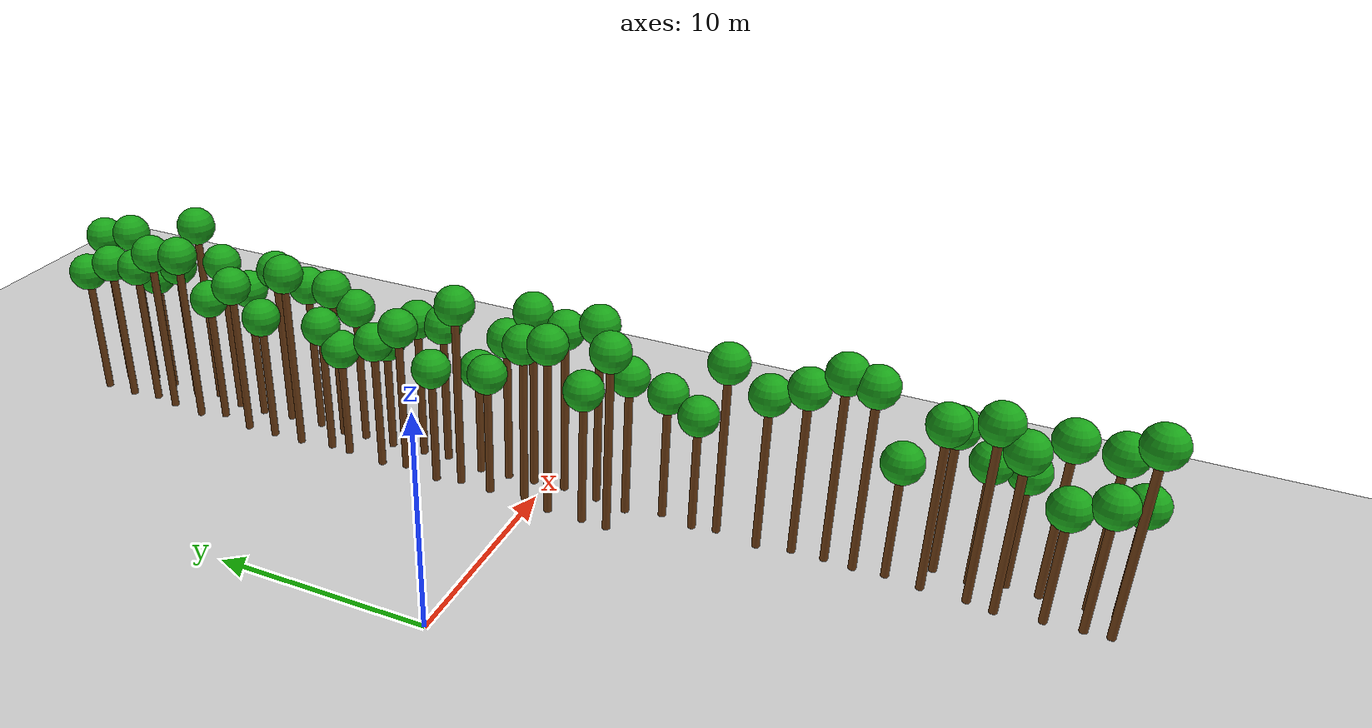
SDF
<sdf version="1.6">
 <world name="forest_world">
  <include><uri>model://sun</uri></include>
  <include><uri>model://ground_plane</uri></include>
  <model name="tree_783">
   <static>true</static>
   <link name="trunk">
    <collision name="collision">
     <pose>9.26 -3.86 4.20 0 0 0</pose>
     <geometry><cylinder><radius>0.18</radius><length>8.40</length></cylinder></geometry>
    </collision>
    <visual name="trunk_visual">
     <pose>9.26 -3.86 4.20 0 0 0</pose>
     <geometry><cylinder><radius>0.18</radius><length>8.40</length></cylinder></geometry>
     <material><ambient>0.35 0.20 0.05 1</ambient><diffuse>0.45 0.25 0.08 1</diffuse></material>
    </visual>
    <visual name="leaf_visual">
     <pose>9.26 -3.86 8.85 0 0 0</pose>
     <geometry><sphere><radius>0.9</radius></sphere></geometry>
     <material><ambient>0.05 0.45 0.05 1</ambient><diffuse>0.10 0.65 0.10 1</diffuse></material>
    </visual>
   </link>
  </model>
  <model name="tree_784">
   <static>true</static>
   <link name="trunk">
    <collision name="collision">
     <pose>9.31 -2.65 3.12 0 0 0</pose>
     <geometry><cylinder><radius>0.18</radius><length>6.24</length></cylinder></geometry>
    </collision>
    <visual name="trunk_visual">
     <pose>9.31 -2.65 3.12 0 0 0</pose>
     <geometry><cylinder><radius>0.18</radius><length>6.24</length></cylinder></geometry>
     <material><ambient>0.35 0.20 0.05 1</ambient><diffuse>0.45 0.25 0.08 1</diffuse></material>
    </visual>
    <visual name="leaf_visual">
     <pose>9.31 -2.65 6.69 0 0 0</pose>
     <geometry><sphere><radius>0.9</radius></sphere></geometry>
     <material><ambient>0.05 0.45 0.05 1</ambient><diffuse>0.10 0.65 0.10 1</diffuse></material>
    </visual>
   </link>
  </model>
  <model name="tree_785">
   <static>true</static>
   <link name="trunk">
    <collision name="collision">
     <pose>9.34 -0.96 4.01 0 0 0</pose>
     <geometry><cylinder><radius>0.18</radius><length>8.03</length></cylinder></geometry>
    </collision>
    <visual name="trunk_visual">
     <pose>9.34 -0.96 4.01 0 0 0</pose>
     <geometry><cylinder><radius>0.18</radius><length>8.03</length></cylinder></geometry>
     <material><ambient>0.35 0.20 0.05 1</ambient><diffuse>0.45 0.25 0.08 1</diffuse></material>
    </visual>
    <visual name="leaf_visual">
     <pose>9.34 -0.96 8.48 0 0 0</pose>
     <geometry><sphere><radius>0.9</radius></sphere></geometry>
     <material><ambient>0.05 0.45 0.05 1</ambient><diffuse>0.10 0.65 0.10 1</diffuse></material>
    </visual>
   </link>
  </model>
  <model name="tree_786">
   <static>true</static>
   <link name="trunk">
    <collision name="collision">
     <pose>9.75 0.42 3.75 0 0 0</pose>
     <geometry><cylinder><radius>0.18</radius><length>7.51</length></cylinder></geometry>
    </collision>
    <visual name="trunk_visual">
     <pose>9.75 0.42 3.75 0 0 0</pose>
     <geometry><cylinder><radius>0.18</radius><length>7.51</length></cylinder></geometry>
     <material><ambient>0.35 0.20 0.05 1</ambient><diffuse>0.45 0.25 0.08 1</diffuse></material>
    </visual>
    <visual name="leaf_visual">
     <pose>9.75 0.42 7.96 0 0 0</pose>
     <geometry><sphere><radius>0.9</radius></sphere></geometry>
     <material><ambient>0.05 0.45 0.05 1</ambient><diffuse>0.10 0.65 0.10 1</diffuse></material>
    </visual>
   </link>
  </model>
  <model name="tree_787">
   <static>true</static>
   <link name="trunk">
    <collision name="collision">
     <pose>9.58 2.10 2.86 0 0 0</pose>
     <geometry><cylinder><radius>0.18</radius><length>5.72</length></cylinder></geometry>
    </collision>
    <visual name="trunk_visual">
     <pose>9.58 2.10 2.86 0 0 0</pose>
     <geometry><cylinder><radius>0.18</radius><length>5.72</length></cylinder></geometry>
     <material><ambient>0.35 0.20 0.05 1</ambient><diffuse>0.45 0.25 0.08 1</diffuse></material>
    </visual>
    <visual name="leaf_visual">
     <pose>9.58 2.10 6.17 0 0 0</pose>
     <geometry><sphere><radius>0.9</radius></sphere></geometry>
     <material><ambient>0.05 0.45 0.05 1</ambient><diffuse>0.10 0.65 0.10 1</diffuse></material>
    </visual>
   </link>
  </model>
  <model name="tree_788">
   <static>true</static>
   <link name="trunk">
    <collision name="collision">
     <pose>9.66 3.66 4.35 0 0 0</pose>
     <geometry><cylinder><radius>0.18</radius><length>8.70</length></cylinder></geometry>
    </collision>
    <visual name="trunk_visual">
     <pose>9.66 3.66 4.35 0 0 0</pose>
     <geometry><cylinder><radius>0.18</radius><length>8.70</length></cylinder></geometry>
     <material><ambient>0.35 0.20 0.05 1</ambient><diffuse>0.45 0.25 0.08 1</diffuse></material>
    </visual>
    <visual name="leaf_visual">
     <pose>9.66 3.66 9.15 0 0 0</pose>
     <geometry><sphere><radius>0.9</radius></sphere></geometry>
     <material><ambient>0.05 0.45 0.05 1</ambient><diffuse>0.10 0.65 0.10 1</diffuse></material>
    </visual>
   </link>
  </model>
  <model name="tree_789">
   <static>true</static>
   <link name="trunk">
    <collision name="collision">
     <pose>9.36 4.81 2.72 0 0 0</pose>
     <geometry><cylinder><radius>0.18</radius><length>5.44</length></cylinder></geometry>
    </collision>
    <visual name="trunk_visual">
     <pose>9.36 4.81 2.72 0 0 0</pose>
     <geometry><cylinder><radius>0.18</radius><length>5.44</length></cylinder></geometry>
     <material><ambient>0.35 0.20 0.05 1</ambient><diffuse>0.45 0.25 0.08 1</diffuse></material>
    </visual>
    <visual name="leaf_visual">
     <pose>9.36 4.81 5.89 0 0 0</pose>
     <geometry><sphere><radius>0.9</radius></sphere></geometry>
     <material><ambient>0.05 0.45 0.05 1</ambient><diffuse>0.10 0.65 0.10 1</diffuse></material>
    </visual>
   </link>
  </model>
  <model name="tree_790">
   <static>true</static>
   <link name="trunk">
    <collision name="collision">
     <pose>9.67 6.63 3.46 0 0 0</pose>
     <geometry><cylinder><radius>0.18</radius><length>6.92</length></cylinder></geometry>
    </collision>
    <visual name="trunk_visual">
     <pose>9.67 6.63 3.46 0 0 0</pose>
     <geometry><cylinder><radius>0.18</radius><length>6.92</length></cylinder></geometry>
     <material><ambient>0.35 0.20 0.05 1</ambient><diffuse>0.45 0.25 0.08 1</diffuse></material>
    </visual>
    <visual name="leaf_visual">
     <pose>9.67 6.63 7.37 0 0 0</pose>
     <geometry><sphere><radius>0.9</radius></sphere></geometry>
     <material><ambient>0.05 0.45 0.05 1</ambient><diffuse>0.10 0.65 0.10 1</diffuse></material>
    </visual>
   </link>
  </model>
  <model name="tree_791">
   <static>true</static>
   <link name="trunk">
    <collision name="collision">
     <pose>9.41 7.80 3.04 0 0 0</pose>
     <geometry><cylinder><radius>0.18</radius><length>6.08</length></cylinder></geometry>
    </collision>
    <visual name="trunk_visual">
     <pose>9.41 7.80 3.04 0 0 0</pose>
     <geometry><cylinder><radius>0.18</radius><length>6.08</length></cylinder></geometry>
     <material><ambient>0.35 0.20 0.05 1</ambient><diffuse>0.45 0.25 0.08 1</diffuse></material>
    </visual>
    <visual name="leaf_visual">
     <pose>9.41 7.80 6.53 0 0 0</pose>
     <geometry><sphere><radius>0.9</radius></sphere></geometry>
     <material><ambient>0.05 0.45 0.05 1</ambient><diffuse>0.10 0.65 0.10 1</diffuse></material>
    </visual>
   </link>
  </model>
  <model name="tree_792">
   <static>true</static>
   <link name="trunk">
    <collision name="collision">
     <pose>9.56 9.74 2.58 0 0 0</pose>
     <geometry><cylinder><radius>0.18</radius><length>5.17</length></cylinder></geometry>
    </collision>
    <visual name="trunk_visual">
     <pose>9.56 9.74 2.58 0 0 0</pose>
     <geometry><cylinder><radius>0.18</radius><length>5.17</length></cylinder></geometry>
     <material><ambient>0.35 0.20 0.05 1</ambient><diffuse>0.45 0.25 0.08 1</diffuse></material>
    </visual>
    <visual name="leaf_visual">
     <pose>9.56 9.74 5.62 0 0 0</pose>
     <geometry><sphere><radius>0.9</radius></sphere></geometry>
     <material><ambient>0.05 0.45 0.05 1</ambient><diffuse>0.10 0.65 0.10 1</diffuse></material>
    </visual>
   </link>
  </model>
  <model name="tree_793">
   <static>true</static>
   <link name="trunk">
    <collision name="collision">
     <pose>9.60 10.76 3.06 0 0 0</pose>
     <geometry><cylinder><radius>0.18</radius><length>6.11</length></cylinder></geometry>
    </collision>
    <visual name="trunk_visual">
     <pose>9.60 10.76 3.06 0 0 0</pose>
     <geometry><cylinder><radius>0.18</radius><length>6.11</length></cylinder></geometry>
     <material><ambient>0.35 0.20 0.05 1</ambient><diffuse>0.45 0.25 0.08 1</diffuse></material>
    </visual>
    <visual name="leaf_visual">
     <pose>9.60 10.76 6.56 0 0 0</pose>
     <geometry><sphere><radius>0.9</radius></sphere></geometry>
     <material><ambient>0.05 0.45 0.05 1</ambient><diffuse>0.10 0.65 0.10 1</diffuse></material>
    </visual>
   </link>
  </model>
  <model name="tree_794">
   <static>true</static>
   <link name="trunk">
    <collision name="collision">
     <pose>9.33 12.37 4.27 0 0 0</pose>
     <geometry><cylinder><radius>0.18</radius><length>8.54</length></cylinder></geometry>
    </collision>
    <visual name="trunk_visual">
     <pose>9.33 12.37 4.27 0 0 0</pose>
     <geometry><cylinder><radius>0.18</radius><length>8.54</length></cylinder></geometry>
     <material><ambient>0.35 0.20 0.05 1</ambient><diffuse>0.45 0.25 0.08 1</diffuse></material>
    </visual>
    <visual name="leaf_visual">
     <pose>9.33 12.37 8.99 0 0 0</pose>
     <geometry><sphere><radius>0.9</radius></sphere></geometry>
     <material><ambient>0.05 0.45 0.05 1</ambient><diffuse>0.10 0.65 0.10 1</diffuse></material>
    </visual>
   </link>
  </model>
  <model name="tree_795">
   <static>true</static>
   <link name="trunk">
    <collision name="collision">
     <pose>9.31 13.92 3.00 0 0 0</pose>
     <geometry><cylinder><radius>0.18</radius><length>6.00</length></cylinder></geometry>
    </collision>
    <visual name="trunk_visual">
     <pose>9.31 13.92 3.00 0 0 0</pose>
     <geometry><cylinder><radius>0.18</radius><length>6.00</length></cylinder></geometry>
     <material><ambient>0.35 0.20 0.05 1</ambient><diffuse>0.45 0.25 0.08 1</diffuse></material>
    </visual>
    <visual name="leaf_visual">
     <pose>9.31 13.92 6.45 0 0 0</pose>
     <geometry><sphere><radius>0.9</radius></sphere></geometry>
     <material><ambient>0.05 0.45 0.05 1</ambient><diffuse>0.10 0.65 0.10 1</diffuse></material>
    </visual>
   </link>
  </model>
  <model name="tree_796">
   <static>true</static>
   <link name="trunk">
    <collision name="collision">
     <pose>9.30 15.45 3.65 0 0 0</pose>
     <geometry><cylinder><radius>0.18</radius><length>7.31</length></cylinder></geometry>
    </collision>
    <visual name="trunk_visual">
     <pose>9.30 15.45 3.65 0 0 0</pose>
     <geometry><cylinder><radius>0.18</radius><length>7.31</length></cylinder></geometry>
     <material><ambient>0.35 0.20 0.05 1</ambient><diffuse>0.45 0.25 0.08 1</diffuse></material>
    </visual>
    <visual name="leaf_visual">
     <pose>9.30 15.45 7.76 0 0 0</pose>
     <geometry><sphere><radius>0.9</radius></sphere></geometry>
     <material><ambient>0.05 0.45 0.05 1</ambient><diffuse>0.10 0.65 0.10 1</diffuse></material>
    </visual>
   </link>
  </model>
  <model name="tree_797">
   <static>true</static>
   <link name="trunk">
    <collision name="collision">
     <pose>9.69 17.21 3.04 0 0 0</pose>
     <geometry><cylinder><radius>0.18</radius><length>6.08</length></cylinder></geometry>
    </collision>
    <visual name="trunk_visual">
     <pose>9.69 17.21 3.04 0 0 0</pose>
     <geometry><cylinder><radius>0.18</radius><length>6.08</length></cylinder></geometry>
     <material><ambient>0.35 0.20 0.05 1</ambient><diffuse>0.45 0.25 0.08 1</diffuse></material>
    </visual>
    <visual name="leaf_visual">
     <pose>9.69 17.21 6.53 0 0 0</pose>
     <geometry><sphere><radius>0.9</radius></sphere></geometry>
     <material><ambient>0.05 0.45 0.05 1</ambient><diffuse>0.10 0.65 0.10 1</diffuse></material>
    </visual>
   </link>
  </model>
  <model name="tree_798">
   <static>true</static>
   <link name="trunk">
    <collision name="collision">
     <pose>9.28 18.41 4.13 0 0 0</pose>
     <geometry><cylinder><radius>0.18</radius><length>8.27</length></cylinder></geometry>
    </collision>
    <visual name="trunk_visual">
     <pose>9.28 18.41 4.13 0 0 0</pose>
     <geometry><cylinder><radius>0.18</radius><length>8.27</length></cylinder></geometry>
     <material><ambient>0.35 0.20 0.05 1</ambient><diffuse>0.45 0.25 0.08 1</diffuse></material>
    </visual>
    <visual name="leaf_visual">
     <pose>9.28 18.41 8.72 0 0 0</pose>
     <geometry><sphere><radius>0.9</radius></sphere></geometry>
     <material><ambient>0.05 0.45 0.05 1</ambient><diffuse>0.10 0.65 0.10 1</diffuse></material>
    </visual>
   </link>
  </model>
  <model name="tree_799">
   <static>true</static>
   <link name="trunk">
    <collision name="collision">
     <pose>9.42 20.18 3.99 0 0 0</pose>
     <geometry><cylinder><radius>0.18</radius><length>7.97</length></cylinder></geometry>
    </collision>
    <visual name="trunk_visual">
     <pose>9.42 20.18 3.99 0 0 0</pose>
     <geometry><cylinder><radius>0.18</radius><length>7.97</length></cylinder></geometry>
     <material><ambient>0.35 0.20 0.05 1</ambient><diffuse>0.45 0.25 0.08 1</diffuse></material>
    </visual>
    <visual name="leaf_visual">
     <pose>9.42 20.18 8.42 0 0 0</pose>
     <geometry><sphere><radius>0.9</radius></sphere></geometry>
     <material><ambient>0.05 0.45 0.05 1</ambient><diffuse>0.10 0.65 0.10 1</diffuse></material>
    </visual>
   </link>
  </model>
  <model name="tree_800">
   <static>true</static>
   <link name="trunk">
    <collision name="collision">
     <pose>9.67 21.48 3.45 0 0 0</pose>
     <geometry><cylinder><radius>0.18</radius><length>6.91</length></cylinder></geometry>
    </collision>
    <visual name="trunk_visual">
     <pose>9.67 21.48 3.45 0 0 0</pose>
     <geometry><cylinder><radius>0.18</radius><length>6.91</length></cylinder></geometry>
     <material><ambient>0.35 0.20 0.05 1</ambient><diffuse>0.45 0.25 0.08 1</diffuse></material>
    </visual>
    <visual name="leaf_visual">
     <pose>9.67 21.48 7.36 0 0 0</pose>
     <geometry><sphere><radius>0.9</radius></sphere></geometry>
     <material><ambient>0.05 0.45 0.05 1</ambient><diffuse>0.10 0.65 0.10 1</diffuse></material>
    </visual>
   </link>
  </model>
  <model name="tree_801">
   <static>true</static>
   <link name="trunk">
    <collision name="collision">
     <pose>9.48 22.89 3.45 0 0 0</pose>
     <geometry><cylinder><radius>0.18</radius><length>6.91</length></cylinder></geometry>
    </collision>
    <visual name="trunk_visual">
     <pose>9.48 22.89 3.45 0 0 0</pose>
     <geometry><cylinder><radius>0.18</radius><length>6.91</length></cylinder></geometry>
     <material><ambient>0.35 0.20 0.05 1</ambient><diffuse>0.45 0.25 0.08 1</diffuse></material>
    </visual>
    <visual name="leaf_visual">
     <pose>9.48 22.89 7.36 0 0 0</pose>
     <geometry><sphere><radius>0.9</radius></sphere></geometry>
     <material><ambient>0.05 0.45 0.05 1</ambient><diffuse>0.10 0.65 0.10 1</diffuse></material>
    </visual>
   </link>
  </model>
  <model name="tree_802">
   <static>true</static>
   <link name="trunk">
    <collision name="collision">
     <pose>9.51 24.56 3.05 0 0 0</pose>
     <geometry><cylinder><radius>0.18</radius><length>6.09</length></cylinder></geometry>
    </collision>
    <visual name="trunk_visual">
     <pose>9.51 24.56 3.05 0 0 0</pose>
     <geometry><cylinder><radius>0.18</radius><length>6.09</length></cylinder></geometry>
     <material><ambient>0.35 0.20 0.05 1</ambient><diffuse>0.45 0.25 0.08 1</diffuse></material>
    </visual>
    <visual name="leaf_visual">
     <pose>9.51 24.56 6.54 0 0 0</pose>
     <geometry><sphere><radius>0.9</radius></sphere></geometry>
     <material><ambient>0.05 0.45 0.05 1</ambient><diffuse>0.10 0.65 0.10 1</diffuse></material>
    </visual>
   </link>
  </model>
  <model name="tree_803">
   <static>true</static>
   <link name="trunk">
    <collision name="collision">
     <pose>11.19 -24.77 4.27 0 0 0</pose>
     <geometry><cylinder><radius>0.18</radius><length>8.55</length></cylinder></geometry>
    </collision>
    <visual name="trunk_visual">
     <pose>11.19 -24.77 4.27 0 0 0</pose>
     <geometry><cylinder><radius>0.18</radius><length>8.55</length></cylinder></geometry>
     <material><ambient>0.35 0.20 0.05 1</ambient><diffuse>0.45 0.25 0.08 1</diffuse></material>
    </visual>
    <visual name="leaf_visual">
     <pose>11.19 -24.77 9.00 0 0 0</pose>
     <geometry><sphere><radius>0.9</radius></sphere></geometry>
     <material><ambient>0.05 0.45 0.05 1</ambient><diffuse>0.10 0.65 0.10 1</diffuse></material>
    </visual>
   </link>
  </model>
  <model name="tree_804">
   <static>true</static>
   <link name="trunk">
    <collision name="collision">
     <pose>11.14 -23.72 2.79 0 0 0</pose>
     <geometry><cylinder><radius>0.18</radius><length>5.58</length></cylinder></geometry>
    </collision>
    <visual name="trunk_visual">
     <pose>11.14 -23.72 2.79 0 0 0</pose>
     <geometry><cylinder><radius>0.18</radius><length>5.58</length></cylinder></geometry>
     <material><ambient>0.35 0.20 0.05 1</ambient><diffuse>0.45 0.25 0.08 1</diffuse></material>
    </visual>
    <visual name="leaf_visual">
     <pose>11.14 -23.72 6.03 0 0 0</pose>
     <geometry><sphere><radius>0.9</radius></sphere></geometry>
     <material><ambient>0.05 0.45 0.05 1</ambient><diffuse>0.10 0.65 0.10 1</diffuse></material>
    </visual>
   </link>
  </model>
  <model name="tree_805">
   <static>true</static>
   <link name="trunk">
    <collision name="collision">
     <pose>11.04 -22.18 2.54 0 0 0</pose>
     <geometry><cylinder><radius>0.18</radius><length>5.08</length></cylinder></geometry>
    </collision>
    <visual name="trunk_visual">
     <pose>11.04 -22.18 2.54 0 0 0</pose>
     <geometry><cylinder><radius>0.18</radius><length>5.08</length></cylinder></geometry>
     <material><ambient>0.35 0.20 0.05 1</ambient><diffuse>0.45 0.25 0.08 1</diffuse></material>
    </visual>
    <visual name="leaf_visual">
     <pose>11.04 -22.18 5.53 0 0 0</pose>
     <geometry><sphere><radius>0.9</radius></sphere></geometry>
     <material><ambient>0.05 0.45 0.05 1</ambient><diffuse>0.10 0.65 0.10 1</diffuse></material>
    </visual>
   </link>
  </model>
  <model name="tree_806">
   <static>true</static>
   <link name="trunk">
    <collision name="collision">
     <pose>10.81 -20.28 3.62 0 0 0</pose>
     <geometry><cylinder><radius>0.18</radius><length>7.25</length></cylinder></geometry>
    </collision>
    <visual name="trunk_visual">
     <pose>10.81 -20.28 3.62 0 0 0</pose>
     <geometry><cylinder><radius>0.18</radius><length>7.25</length></cylinder></geometry>
     <material><ambient>0.35 0.20 0.05 1</ambient><diffuse>0.45 0.25 0.08 1</diffuse></material>
    </visual>
    <visual name="leaf_visual">
     <pose>10.81 -20.28 7.70 0 0 0</pose>
     <geometry><sphere><radius>0.9</radius></sphere></geometry>
     <material><ambient>0.05 0.45 0.05 1</ambient><diffuse>0.10 0.65 0.10 1</diffuse></material>
    </visual>
   </link>
  </model>
  <model name="tree_807">
   <static>true</static>
   <link name="trunk">
    <collision name="collision">
     <pose>11.01 -19.17 4.05 0 0 0</pose>
     <geometry><cylinder><radius>0.18</radius><length>8.10</length></cylinder></geometry>
    </collision>
    <visual name="trunk_visual">
     <pose>11.01 -19.17 4.05 0 0 0</pose>
     <geometry><cylinder><radius>0.18</radius><length>8.10</length></cylinder></geometry>
     <material><ambient>0.35 0.20 0.05 1</ambient><diffuse>0.45 0.25 0.08 1</diffuse></material>
    </visual>
    <visual name="leaf_visual">
     <pose>11.01 -19.17 8.55 0 0 0</pose>
     <geometry><sphere><radius>0.9</radius></sphere></geometry>
     <material><ambient>0.05 0.45 0.05 1</ambient><diffuse>0.10 0.65 0.10 1</diffuse></material>
    </visual>
   </link>
  </model>
  <model name="tree_808">
   <static>true</static>
   <link name="trunk">
    <collision name="collision">
     <pose>11.05 -17.27 3.76 0 0 0</pose>
     <geometry><cylinder><radius>0.18</radius><length>7.52</length></cylinder></geometry>
    </collision>
    <visual name="trunk_visual">
     <pose>11.05 -17.27 3.76 0 0 0</pose>
     <geometry><cylinder><radius>0.18</radius><length>7.52</length></cylinder></geometry>
     <material><ambient>0.35 0.20 0.05 1</ambient><diffuse>0.45 0.25 0.08 1</diffuse></material>
    </visual>
    <visual name="leaf_visual">
     <pose>11.05 -17.27 7.97 0 0 0</pose>
     <geometry><sphere><radius>0.9</radius></sphere></geometry>
     <material><ambient>0.05 0.45 0.05 1</ambient><diffuse>0.10 0.65 0.10 1</diffuse></material>
    </visual>
   </link>
  </model>
  <model name="tree_809">
   <static>true</static>
   <link name="trunk">
    <collision name="collision">
     <pose>11.25 -15.76 2.60 0 0 0</pose>
     <geometry><cylinder><radius>0.18</radius><length>5.21</length></cylinder></geometry>
    </collision>
    <visual name="trunk_visual">
     <pose>11.25 -15.76 2.60 0 0 0</pose>
     <geometry><cylinder><radius>0.18</radius><length>5.21</length></cylinder></geometry>
     <material><ambient>0.35 0.20 0.05 1</ambient><diffuse>0.45 0.25 0.08 1</diffuse></material>
    </visual>
    <visual name="leaf_visual">
     <pose>11.25 -15.76 5.66 0 0 0</pose>
     <geometry><sphere><radius>0.9</radius></sphere></geometry>
     <material><ambient>0.05 0.45 0.05 1</ambient><diffuse>0.10 0.65 0.10 1</diffuse></material>
    </visual>
   </link>
  </model>
  <model name="tree_810">
   <static>true</static>
   <link name="trunk">
    <collision name="collision">
     <pose>11.14 -14.40 4.22 0 0 0</pose>
     <geometry><cylinder><radius>0.18</radius><length>8.44</length></cylinder></geometry>
    </collision>
    <visual name="trunk_visual">
     <pose>11.14 -14.40 4.22 0 0 0</pose>
     <geometry><cylinder><radius>0.18</radius><length>8.44</length></cylinder></geometry>
     <material><ambient>0.35 0.20 0.05 1</ambient><diffuse>0.45 0.25 0.08 1</diffuse></material>
    </visual>
    <visual name="leaf_visual">
     <pose>11.14 -14.40 8.89 0 0 0</pose>
     <geometry><sphere><radius>0.9</radius></sphere></geometry>
     <material><ambient>0.05 0.45 0.05 1</ambient><diffuse>0.10 0.65 0.10 1</diffuse></material>
    </visual>
   </link>
  </model>
  <model name="tree_811">
   <static>true</static>
   <link name="trunk">
    <collision name="collision">
     <pose>11.23 -13.15 4.33 0 0 0</pose>
     <geometry><cylinder><radius>0.18</radius><length>8.66</length></cylinder></geometry>
    </collision>
    <visual name="trunk_visual">
     <pose>11.23 -13.15 4.33 0 0 0</pose>
     <geometry><cylinder><radius>0.18</radius><length>8.66</length></cylinder></geometry>
     <material><ambient>0.35 0.20 0.05 1</ambient><diffuse>0.45 0.25 0.08 1</diffuse></material>
    </visual>
    <visual name="leaf_visual">
     <pose>11.23 -13.15 9.11 0 0 0</pose>
     <geometry><sphere><radius>0.9</radius></sphere></geometry>
     <material><ambient>0.05 0.45 0.05 1</ambient><diffuse>0.10 0.65 0.10 1</diffuse></material>
    </visual>
   </link>
  </model>
  <model name="tree_812">
   <static>true</static>
   <link name="trunk">
    <collision name="collision">
     <pose>11.17 -11.73 3.84 0 0 0</pose>
     <geometry><cylinder><radius>0.18</radius><length>7.67</length></cylinder></geometry>
    </collision>
    <visual name="trunk_visual">
     <pose>11.17 -11.73 3.84 0 0 0</pose>
     <geometry><cylinder><radius>0.18</radius><length>7.67</length></cylinder></geometry>
     <material><ambient>0.35 0.20 0.05 1</ambient><diffuse>0.45 0.25 0.08 1</diffuse></material>
    </visual>
    <visual name="leaf_visual">
     <pose>11.17 -11.73 8.12 0 0 0</pose>
     <geometry><sphere><radius>0.9</radius></sphere></geometry>
     <material><ambient>0.05 0.45 0.05 1</ambient><diffuse>0.10 0.65 0.10 1</diffuse></material>
    </visual>
   </link>
  </model>
  <model name="tree_813">
   <static>true</static>
   <link name="trunk">
    <collision name="collision">
     <pose>10.88 -10.23 3.56 0 0 0</pose>
     <geometry><cylinder><radius>0.18</radius><length>7.13</length></cylinder></geometry>
    </collision>
    <visual name="trunk_visual">
     <pose>10.88 -10.23 3.56 0 0 0</pose>
     <geometry><cylinder><radius>0.18</radius><length>7.13</length></cylinder></geometry>
     <material><ambient>0.35 0.20 0.05 1</ambient><diffuse>0.45 0.25 0.08 1</diffuse></material>
    </visual>
    <visual name="leaf_visual">
     <pose>10.88 -10.23 7.58 0 0 0</pose>
     <geometry><sphere><radius>0.9</radius></sphere></geometry>
     <material><ambient>0.05 0.45 0.05 1</ambient><diffuse>0.10 0.65 0.10 1</diffuse></material>
    </visual>
   </link>
  </model>
  <model name="tree_814">
   <static>true</static>
   <link name="trunk">
    <collision name="collision">
     <pose>11.16 -8.32 4.00 0 0 0</pose>
     <geometry><cylinder><radius>0.18</radius><length>8.00</length></cylinder></geometry>
    </collision>
    <visual name="trunk_visual">
     <pose>11.16 -8.32 4.00 0 0 0</pose>
     <geometry><cylinder><radius>0.18</radius><length>8.00</length></cylinder></geometry>
     <material><ambient>0.35 0.20 0.05 1</ambient><diffuse>0.45 0.25 0.08 1</diffuse></material>
    </visual>
    <visual name="leaf_visual">
     <pose>11.16 -8.32 8.45 0 0 0</pose>
     <geometry><sphere><radius>0.9</radius></sphere></geometry>
     <material><ambient>0.05 0.45 0.05 1</ambient><diffuse>0.10 0.65 0.10 1</diffuse></material>
    </visual>
   </link>
  </model>
  <model name="tree_815">
   <static>true</static>
   <link name="trunk">
    <collision name="collision">
     <pose>10.98 -7.23 2.64 0 0 0</pose>
     <geometry><cylinder><radius>0.18</radius><length>5.28</length></cylinder></geometry>
    </collision>
    <visual name="trunk_visual">
     <pose>10.98 -7.23 2.64 0 0 0</pose>
     <geometry><cylinder><radius>0.18</radius><length>5.28</length></cylinder></geometry>
     <material><ambient>0.35 0.20 0.05 1</ambient><diffuse>0.45 0.25 0.08 1</diffuse></material>
    </visual>
    <visual name="leaf_visual">
     <pose>10.98 -7.23 5.73 0 0 0</pose>
     <geometry><sphere><radius>0.9</radius></sphere></geometry>
     <material><ambient>0.05 0.45 0.05 1</ambient><diffuse>0.10 0.65 0.10 1</diffuse></material>
    </visual>
   </link>
  </model>
  <model name="tree_816">
   <static>true</static>
   <link name="trunk">
    <collision name="collision">
     <pose>11.24 -5.73 2.93 0 0 0</pose>
     <geometry><cylinder><radius>0.18</radius><length>5.85</length></cylinder></geometry>
    </collision>
    <visual name="trunk_visual">
     <pose>11.24 -5.73 2.93 0 0 0</pose>
     <geometry><cylinder><radius>0.18</radius><length>5.85</length></cylinder></geometry>
     <material><ambient>0.35 0.20 0.05 1</ambient><diffuse>0.45 0.25 0.08 1</diffuse></material>
    </visual>
    <visual name="leaf_visual">
     <pose>11.24 -5.73 6.30 0 0 0</pose>
     <geometry><sphere><radius>0.9</radius></sphere></geometry>
     <material><ambient>0.05 0.45 0.05 1</ambient><diffuse>0.10 0.65 0.10 1</diffuse></material>
    </visual>
   </link>
  </model>
  <model name="tree_817">
   <static>true</static>
   <link name="trunk">
    <collision name="collision">
     <pose>10.81 -4.11 3.26 0 0 0</pose>
     <geometry><cylinder><radius>0.18</radius><length>6.52</length></cylinder></geometry>
    </collision>
    <visual name="trunk_visual">
     <pose>10.81 -4.11 3.26 0 0 0</pose>
     <geometry><cylinder><radius>0.18</radius><length>6.52</length></cylinder></geometry>
     <material><ambient>0.35 0.20 0.05 1</ambient><diffuse>0.45 0.25 0.08 1</diffuse></material>
    </visual>
    <visual name="leaf_visual">
     <pose>10.81 -4.11 6.97 0 0 0</pose>
     <geometry><sphere><radius>0.9</radius></sphere></geometry>
     <material><ambient>0.05 0.45 0.05 1</ambient><diffuse>0.10 0.65 0.10 1</diffuse></material>
    </visual>
   </link>
  </model>
  <model name="tree_818">
   <static>true</static>
   <link name="trunk">
    <collision name="collision">
     <pose>11.08 -2.58 4.25 0 0 0</pose>
     <geometry><cylinder><radius>0.18</radius><length>8.51</length></cylinder></geometry>
    </collision>
    <visual name="trunk_visual">
     <pose>11.08 -2.58 4.25 0 0 0</pose>
     <geometry><cylinder><radius>0.18</radius><length>8.51</length></cylinder></geometry>
     <material><ambient>0.35 0.20 0.05 1</ambient><diffuse>0.45 0.25 0.08 1</diffuse></material>
    </visual>
    <visual name="leaf_visual">
     <pose>11.08 -2.58 8.96 0 0 0</pose>
     <geometry><sphere><radius>0.9</radius></sphere></geometry>
     <material><ambient>0.05 0.45 0.05 1</ambient><diffuse>0.10 0.65 0.10 1</diffuse></material>
    </visual>
   </link>
  </model>
  <model name="tree_819">
   <static>true</static>
   <link name="trunk">
    <collision name="collision">
     <pose>11.23 -0.90 3.91 0 0 0</pose>
     <geometry><cylinder><radius>0.18</radius><length>7.82</length></cylinder></geometry>
    </collision>
    <visual name="trunk_visual">
     <pose>11.23 -0.90 3.91 0 0 0</pose>
     <geometry><cylinder><radius>0.18</radius><length>7.82</length></cylinder></geometry>
     <material><ambient>0.35 0.20 0.05 1</ambient><diffuse>0.45 0.25 0.08 1</diffuse></material>
    </visual>
    <visual name="leaf_visual">
     <pose>11.23 -0.90 8.27 0 0 0</pose>
     <geometry><sphere><radius>0.9</radius></sphere></geometry>
     <material><ambient>0.05 0.45 0.05 1</ambient><diffuse>0.10 0.65 0.10 1</diffuse></material>
    </visual>
   </link>
  </model>
  <model name="tree_820">
   <static>true</static>
   <link name="trunk">
    <collision name="collision">
     <pose>11.10 0.58 4.21 0 0 0</pose>
     <geometry><cylinder><radius>0.18</radius><length>8.41</length></cylinder></geometry>
    </collision>
    <visual name="trunk_visual">
     <pose>11.10 0.58 4.21 0 0 0</pose>
     <geometry><cylinder><radius>0.18</radius><length>8.41</length></cylinder></geometry>
     <material><ambient>0.35 0.20 0.05 1</ambient><diffuse>0.45 0.25 0.08 1</diffuse></material>
    </visual>
    <visual name="leaf_visual">
     <pose>11.10 0.58 8.86 0 0 0</pose>
     <geometry><sphere><radius>0.9</radius></sphere></geometry>
     <material><ambient>0.05 0.45 0.05 1</ambient><diffuse>0.10 0.65 0.10 1</diffuse></material>
    </visual>
   </link>
  </model>
  <model name="tree_821">
   <static>true</static>
   <link name="trunk">
    <collision name="collision">
     <pose>10.99 1.84 3.45 0 0 0</pose>
     <geometry><cylinder><radius>0.18</radius><length>6.90</length></cylinder></geometry>
    </collision>
    <visual name="trunk_visual">
     <pose>10.99 1.84 3.45 0 0 0</pose>
     <geometry><cylinder><radius>0.18</radius><length>6.90</length></cylinder></geometry>
     <material><ambient>0.35 0.20 0.05 1</ambient><diffuse>0.45 0.25 0.08 1</diffuse></material>
    </visual>
    <visual name="leaf_visual">
     <pose>10.99 1.84 7.35 0 0 0</pose>
     <geometry><sphere><radius>0.9</radius></sphere></geometry>
     <material><ambient>0.05 0.45 0.05 1</ambient><diffuse>0.10 0.65 0.10 1</diffuse></material>
    </visual>
   </link>
  </model>
  <model name="tree_822">
   <static>true</static>
   <link name="trunk">
    <collision name="collision">
     <pose>10.91 3.26 2.51 0 0 0</pose>
     <geometry><cylinder><radius>0.18</radius><length>5.02</length></cylinder></geometry>
    </collision>
    <visual name="trunk_visual">
     <pose>10.91 3.26 2.51 0 0 0</pose>
     <geometry><cylinder><radius>0.18</radius><length>5.02</length></cylinder></geometry>
     <material><ambient>0.35 0.20 0.05 1</ambient><diffuse>0.45 0.25 0.08 1</diffuse></material>
    </visual>
    <visual name="leaf_visual">
     <pose>10.91 3.26 5.47 0 0 0</pose>
     <geometry><sphere><radius>0.9</radius></sphere></geometry>
     <material><ambient>0.05 0.45 0.05 1</ambient><diffuse>0.10 0.65 0.10 1</diffuse></material>
    </visual>
   </link>
  </model>
  <model name="tree_823">
   <static>true</static>
   <link name="trunk">
    <collision name="collision">
     <pose>11.18 5.19 3.36 0 0 0</pose>
     <geometry><cylinder><radius>0.18</radius><length>6.71</length></cylinder></geometry>
    </collision>
    <visual name="trunk_visual">
     <pose>11.18 5.19 3.36 0 0 0</pose>
     <geometry><cylinder><radius>0.18</radius><length>6.71</length></cylinder></geometry>
     <material><ambient>0.35 0.20 0.05 1</ambient><diffuse>0.45 0.25 0.08 1</diffuse></material>
    </visual>
    <visual name="leaf_visual">
     <pose>11.18 5.19 7.16 0 0 0</pose>
     <geometry><sphere><radius>0.9</radius></sphere></geometry>
     <material><ambient>0.05 0.45 0.05 1</ambient><diffuse>0.10 0.65 0.10 1</diffuse></material>
    </visual>
   </link>
  </model>
  <model name="tree_824">
   <static>true</static>
   <link name="trunk">
    <collision name="collision">
     <pose>11.08 6.47 3.37 0 0 0</pose>
     <geometry><cylinder><radius>0.18</radius><length>6.74</length></cylinder></geometry>
    </collision>
    <visual name="trunk_visual">
     <pose>11.08 6.47 3.37 0 0 0</pose>
     <geometry><cylinder><radius>0.18</radius><length>6.74</length></cylinder></geometry>
     <material><ambient>0.35 0.20 0.05 1</ambient><diffuse>0.45 0.25 0.08 1</diffuse></material>
    </visual>
    <visual name="leaf_visual">
     <pose>11.08 6.47 7.19 0 0 0</pose>
     <geometry><sphere><radius>0.9</radius></sphere></geometry>
     <material><ambient>0.05 0.45 0.05 1</ambient><diffuse>0.10 0.65 0.10 1</diffuse></material>
    </visual>
   </link>
  </model>
  <model name="tree_825">
   <static>true</static>
   <link name="trunk">
    <collision name="collision">
     <pose>10.97 8.15 2.62 0 0 0</pose>
     <geometry><cylinder><radius>0.18</radius><length>5.24</length></cylinder></geometry>
    </collision>
    <visual name="trunk_visual">
     <pose>10.97 8.15 2.62 0 0 0</pose>
     <geometry><cylinder><radius>0.18</radius><length>5.24</length></cylinder></geometry>
     <material><ambient>0.35 0.20 0.05 1</ambient><diffuse>0.45 0.25 0.08 1</diffuse></material>
    </visual>
    <visual name="leaf_visual">
     <pose>10.97 8.15 5.69 0 0 0</pose>
     <geometry><sphere><radius>0.9</radius></sphere></geometry>
     <material><ambient>0.05 0.45 0.05 1</ambient><diffuse>0.10 0.65 0.10 1</diffuse></material>
    </visual>
   </link>
  </model>
  <model name="tree_826">
   <static>true</static>
   <link name="trunk">
    <collision name="collision">
     <pose>11.03 9.74 3.31 0 0 0</pose>
     <geometry><cylinder><radius>0.18</radius><length>6.62</length></cylinder></geometry>
    </collision>
    <visual name="trunk_visual">
     <pose>11.03 9.74 3.31 0 0 0</pose>
     <geometry><cylinder><radius>0.18</radius><length>6.62</length></cylinder></geometry>
     <material><ambient>0.35 0.20 0.05 1</ambient><diffuse>0.45 0.25 0.08 1</diffuse></material>
    </visual>
    <visual name="leaf_visual">
     <pose>11.03 9.74 7.07 0 0 0</pose>
     <geometry><sphere><radius>0.9</radius></sphere></geometry>
     <material><ambient>0.05 0.45 0.05 1</ambient><diffuse>0.10 0.65 0.10 1</diffuse></material>
    </visual>
   </link>
  </model>
  <model name="tree_827">
   <static>true</static>
   <link name="trunk">
    <collision name="collision">
     <pose>10.89 10.92 3.71 0 0 0</pose>
     <geometry><cylinder><radius>0.18</radius><length>7.41</length></cylinder></geometry>
    </collision>
    <visual name="trunk_visual">
     <pose>10.89 10.92 3.71 0 0 0</pose>
     <geometry><cylinder><radius>0.18</radius><length>7.41</length></cylinder></geometry>
     <material><ambient>0.35 0.20 0.05 1</ambient><diffuse>0.45 0.25 0.08 1</diffuse></material>
    </visual>
    <visual name="leaf_visual">
     <pose>10.89 10.92 7.86 0 0 0</pose>
     <geometry><sphere><radius>0.9</radius></sphere></geometry>
     <material><ambient>0.05 0.45 0.05 1</ambient><diffuse>0.10 0.65 0.10 1</diffuse></material>
    </visual>
   </link>
  </model>
  <model name="tree_828">
   <static>true</static>
   <link name="trunk">
    <collision name="collision">
     <pose>11.03 12.35 3.62 0 0 0</pose>
     <geometry><cylinder><radius>0.18</radius><length>7.23</length></cylinder></geometry>
    </collision>
    <visual name="trunk_visual">
     <pose>11.03 12.35 3.62 0 0 0</pose>
     <geometry><cylinder><radius>0.18</radius><length>7.23</length></cylinder></geometry>
     <material><ambient>0.35 0.20 0.05 1</ambient><diffuse>0.45 0.25 0.08 1</diffuse></material>
    </visual>
    <visual name="leaf_visual">
     <pose>11.03 12.35 7.68 0 0 0</pose>
     <geometry><sphere><radius>0.9</radius></sphere></geometry>
     <material><ambient>0.05 0.45 0.05 1</ambient><diffuse>0.10 0.65 0.10 1</diffuse></material>
    </visual>
   </link>
  </model>
  <model name="tree_829">
   <static>true</static>
   <link name="trunk">
    <collision name="collision">
     <pose>10.98 14.08 3.86 0 0 0</pose>
     <geometry><cylinder><radius>0.18</radius><length>7.71</length></cylinder></geometry>
    </collision>
    <visual name="trunk_visual">
     <pose>10.98 14.08 3.86 0 0 0</pose>
     <geometry><cylinder><radius>0.18</radius><length>7.71</length></cylinder></geometry>
     <material><ambient>0.35 0.20 0.05 1</ambient><diffuse>0.45 0.25 0.08 1</diffuse></material>
    </visual>
    <visual name="leaf_visual">
     <pose>10.98 14.08 8.16 0 0 0</pose>
     <geometry><sphere><radius>0.9</radius></sphere></geometry>
     <material><ambient>0.05 0.45 0.05 1</ambient><diffuse>0.10 0.65 0.10 1</diffuse></material>
    </visual>
   </link>
  </model>
  <model name="tree_830">
   <static>true</static>
   <link name="trunk">
    <collision name="collision">
     <pose>10.79 15.64 3.24 0 0 0</pose>
     <geometry><cylinder><radius>0.18</radius><length>6.47</length></cylinder></geometry>
    </collision>
    <visual name="trunk_visual">
     <pose>10.79 15.64 3.24 0 0 0</pose>
     <geometry><cylinder><radius>0.18</radius><length>6.47</length></cylinder></geometry>
     <material><ambient>0.35 0.20 0.05 1</ambient><diffuse>0.45 0.25 0.08 1</diffuse></material>
    </visual>
    <visual name="leaf_visual">
     <pose>10.79 15.64 6.92 0 0 0</pose>
     <geometry><sphere><radius>0.9</radius></sphere></geometry>
     <material><ambient>0.05 0.45 0.05 1</ambient><diffuse>0.10 0.65 0.10 1</diffuse></material>
    </visual>
   </link>
  </model>
  <model name="tree_831">
   <static>true</static>
   <link name="trunk">
    <collision name="collision">
     <pose>10.85 17.13 3.76 0 0 0</pose>
     <geometry><cylinder><radius>0.18</radius><length>7.52</length></cylinder></geometry>
    </collision>
    <visual name="trunk_visual">
     <pose>10.85 17.13 3.76 0 0 0</pose>
     <geometry><cylinder><radius>0.18</radius><length>7.52</length></cylinder></geometry>
     <material><ambient>0.35 0.20 0.05 1</ambient><diffuse>0.45 0.25 0.08 1</diffuse></material>
    </visual>
    <visual name="leaf_visual">
     <pose>10.85 17.13 7.97 0 0 0</pose>
     <geometry><sphere><radius>0.9</radius></sphere></geometry>
     <material><ambient>0.05 0.45 0.05 1</ambient><diffuse>0.10 0.65 0.10 1</diffuse></material>
    </visual>
   </link>
  </model>
  <model name="tree_832">
   <static>true</static>
   <link name="trunk">
    <collision name="collision">
     <pose>11.18 18.70 4.50 0 0 0</pose>
     <geometry><cylinder><radius>0.18</radius><length>9.00</length></cylinder></geometry>
    </collision>
    <visual name="trunk_visual">
     <pose>11.18 18.70 4.50 0 0 0</pose>
     <geometry><cylinder><radius>0.18</radius><length>9.00</length></cylinder></geometry>
     <material><ambient>0.35 0.20 0.05 1</ambient><diffuse>0.45 0.25 0.08 1</diffuse></material>
    </visual>
    <visual name="leaf_visual">
     <pose>11.18 18.70 9.45 0 0 0</pose>
     <geometry><sphere><radius>0.9</radius></sphere></geometry>
     <material><ambient>0.05 0.45 0.05 1</ambient><diffuse>0.10 0.65 0.10 1</diffuse></material>
    </visual>
   </link>
  </model>
  <model name="tree_833">
   <static>true</static>
   <link name="trunk">
    <collision name="collision">
     <pose>10.80 19.87 3.40 0 0 0</pose>
     <geometry><cylinder><radius>0.18</radius><length>6.79</length></cylinder></geometry>
    </collision>
    <visual name="trunk_visual">
     <pose>10.80 19.87 3.40 0 0 0</pose>
     <geometry><cylinder><radius>0.18</radius><length>6.79</length></cylinder></geometry>
     <material><ambient>0.35 0.20 0.05 1</ambient><diffuse>0.45 0.25 0.08 1</diffuse></material>
    </visual>
    <visual name="leaf_visual">
     <pose>10.80 19.87 7.24 0 0 0</pose>
     <geometry><sphere><radius>0.9</radius></sphere></geometry>
     <material><ambient>0.05 0.45 0.05 1</ambient><diffuse>0.10 0.65 0.10 1</diffuse></material>
    </visual>
   </link>
  </model>
  <model name="tree_834">
   <static>true</static>
   <link name="trunk">
    <collision name="collision">
     <pose>11.04 21.56 2.91 0 0 0</pose>
     <geometry><cylinder><radius>0.18</radius><length>5.81</length></cylinder></geometry>
    </collision>
    <visual name="trunk_visual">
     <pose>11.04 21.56 2.91 0 0 0</pose>
     <geometry><cylinder><radius>0.18</radius><length>5.81</length></cylinder></geometry>
     <material><ambient>0.35 0.20 0.05 1</ambient><diffuse>0.45 0.25 0.08 1</diffuse></material>
    </visual>
    <visual name="leaf_visual">
     <pose>11.04 21.56 6.26 0 0 0</pose>
     <geometry><sphere><radius>0.9</radius></sphere></geometry>
     <material><ambient>0.05 0.45 0.05 1</ambient><diffuse>0.10 0.65 0.10 1</diffuse></material>
    </visual>
   </link>
  </model>
  <model name="tree_835">
   <static>true</static>
   <link name="trunk">
    <collision name="collision">
     <pose>11.14 22.86 3.93 0 0 0</pose>
     <geometry><cylinder><radius>0.18</radius><length>7.86</length></cylinder></geometry>
    </collision>
    <visual name="trunk_visual">
     <pose>11.14 22.86 3.93 0 0 0</pose>
     <geometry><cylinder><radius>0.18</radius><length>7.86</length></cylinder></geometry>
     <material><ambient>0.35 0.20 0.05 1</ambient><diffuse>0.45 0.25 0.08 1</diffuse></material>
    </visual>
    <visual name="leaf_visual">
     <pose>11.14 22.86 8.31 0 0 0</pose>
     <geometry><sphere><radius>0.9</radius></sphere></geometry>
     <material><ambient>0.05 0.45 0.05 1</ambient><diffuse>0.10 0.65 0.10 1</diffuse></material>
    </visual>
   </link>
  </model>
  <model name="tree_836">
   <static>true</static>
   <link name="trunk">
    <collision name="collision">
     <pose>10.79 24.27 3.80 0 0 0</pose>
     <geometry><cylinder><radius>0.18</radius><length>7.60</length></cylinder></geometry>
    </collision>
    <visual name="trunk_visual">
     <pose>10.79 24.27 3.80 0 0 0</pose>
     <geometry><cylinder><radius>0.18</radius><length>7.60</length></cylinder></geometry>
     <material><ambient>0.35 0.20 0.05 1</ambient><diffuse>0.45 0.25 0.08 1</diffuse></material>
    </visual>
    <visual name="leaf_visual">
     <pose>10.79 24.27 8.05 0 0 0</pose>
     <geometry><sphere><radius>0.9</radius></sphere></geometry>
     <material><ambient>0.05 0.45 0.05 1</ambient><diffuse>0.10 0.65 0.10 1</diffuse></material>
    </visual>
   </link>
  </model>
  <model name="tree_837">
   <static>true</static>
   <link name="trunk">
    <collision name="collision">
     <pose>12.51 -24.82 2.54 0 0 0</pose>
     <geometry><cylinder><radius>0.18</radius><length>5.08</length></cylinder></geometry>
    </collision>
    <visual name="trunk_visual">
     <pose>12.51 -24.82 2.54 0 0 0</pose>
     <geometry><cylinder><radius>0.18</radius><length>5.08</length></cylinder></geometry>
     <material><ambient>0.35 0.20 0.05 1</ambient><diffuse>0.45 0.25 0.08 1</diffuse></material>
    </visual>
    <visual name="leaf_visual">
     <pose>12.51 -24.82 5.53 0 0 0</pose>
     <geometry><sphere><radius>0.9</radius></sphere></geometry>
     <material><ambient>0.05 0.45 0.05 1</ambient><diffuse>0.10 0.65 0.10 1</diffuse></material>
    </visual>
   </link>
  </model>
  <model name="tree_838">
   <static>true</static>
   <link name="trunk">
    <collision name="collision">
     <pose>12.62 -23.68 3.52 0 0 0</pose>
     <geometry><cylinder><radius>0.18</radius><length>7.05</length></cylinder></geometry>
    </collision>
    <visual name="trunk_visual">
     <pose>12.62 -23.68 3.52 0 0 0</pose>
     <geometry><cylinder><radius>0.18</radius><length>7.05</length></cylinder></geometry>
     <material><ambient>0.35 0.20 0.05 1</ambient><diffuse>0.45 0.25 0.08 1</diffuse></material>
    </visual>
    <visual name="leaf_visual">
     <pose>12.62 -23.68 7.50 0 0 0</pose>
     <geometry><sphere><radius>0.9</radius></sphere></geometry>
     <material><ambient>0.05 0.45 0.05 1</ambient><diffuse>0.10 0.65 0.10 1</diffuse></material>
    </visual>
   </link>
  </model>
  <model name="tree_839">
   <static>true</static>
   <link name="trunk">
    <collision name="collision">
     <pose>12.64 -21.80 3.57 0 0 0</pose>
     <geometry><cylinder><radius>0.18</radius><length>7.14</length></cylinder></geometry>
    </collision>
    <visual name="trunk_visual">
     <pose>12.64 -21.80 3.57 0 0 0</pose>
     <geometry><cylinder><radius>0.18</radius><length>7.14</length></cylinder></geometry>
     <material><ambient>0.35 0.20 0.05 1</ambient><diffuse>0.45 0.25 0.08 1</diffuse></material>
    </visual>
    <visual name="leaf_visual">
     <pose>12.64 -21.80 7.59 0 0 0</pose>
     <geometry><sphere><radius>0.9</radius></sphere></geometry>
     <material><ambient>0.05 0.45 0.05 1</ambient><diffuse>0.10 0.65 0.10 1</diffuse></material>
    </visual>
   </link>
  </model>
  <model name="tree_840">
   <static>true</static>
   <link name="trunk">
    <collision name="collision">
     <pose>12.73 -20.44 2.61 0 0 0</pose>
     <geometry><cylinder><radius>0.18</radius><length>5.22</length></cylinder></geometry>
    </collision>
    <visual name="trunk_visual">
     <pose>12.73 -20.44 2.61 0 0 0</pose>
     <geometry><cylinder><radius>0.18</radius><length>5.22</length></cylinder></geometry>
     <material><ambient>0.35 0.20 0.05 1</ambient><diffuse>0.45 0.25 0.08 1</diffuse></material>
    </visual>
    <visual name="leaf_visual">
     <pose>12.73 -20.44 5.67 0 0 0</pose>
     <geometry><sphere><radius>0.9</radius></sphere></geometry>
     <material><ambient>0.05 0.45 0.05 1</ambient><diffuse>0.10 0.65 0.10 1</diffuse></material>
    </visual>
   </link>
  </model>
  <model name="tree_841">
   <static>true</static>
   <link name="trunk">
    <collision name="collision">
     <pose>12.25 -19.01 2.79 0 0 0</pose>
     <geometry><cylinder><radius>0.18</radius><length>5.58</length></cylinder></geometry>
    </collision>
    <visual name="trunk_visual">
     <pose>12.25 -19.01 2.79 0 0 0</pose>
     <geometry><cylinder><radius>0.18</radius><length>5.58</length></cylinder></geometry>
     <material><ambient>0.35 0.20 0.05 1</ambient><diffuse>0.45 0.25 0.08 1</diffuse></material>
    </visual>
    <visual name="leaf_visual">
     <pose>12.25 -19.01 6.03 0 0 0</pose>
     <geometry><sphere><radius>0.9</radius></sphere></geometry>
     <material><ambient>0.05 0.45 0.05 1</ambient><diffuse>0.10 0.65 0.10 1</diffuse></material>
    </visual>
   </link>
  </model>
  <model name="tree_842">
   <static>true</static>
   <link name="trunk">
    <collision name="collision">
     <pose>12.49 -17.50 3.33 0 0 0</pose>
     <geometry><cylinder><radius>0.18</radius><length>6.66</length></cylinder></geometry>
    </collision>
    <visual name="trunk_visual">
     <pose>12.49 -17.50 3.33 0 0 0</pose>
     <geometry><cylinder><radius>0.18</radius><length>6.66</length></cylinder></geometry>
     <material><ambient>0.35 0.20 0.05 1</ambient><diffuse>0.45 0.25 0.08 1</diffuse></material>
    </visual>
    <visual name="leaf_visual">
     <pose>12.49 -17.50 7.11 0 0 0</pose>
     <geometry><sphere><radius>0.9</radius></sphere></geometry>
     <material><ambient>0.05 0.45 0.05 1</ambient><diffuse>0.10 0.65 0.10 1</diffuse></material>
    </visual>
   </link>
  </model>
 </world>
</sdf>
